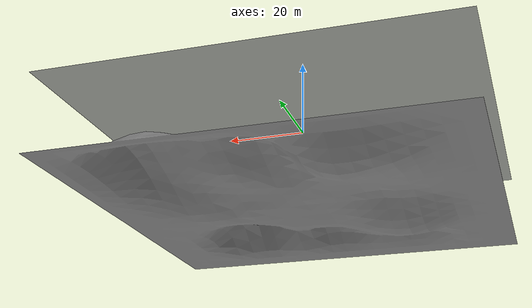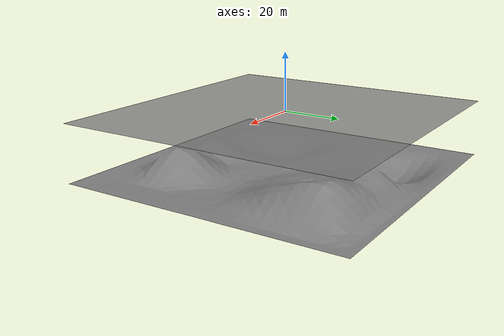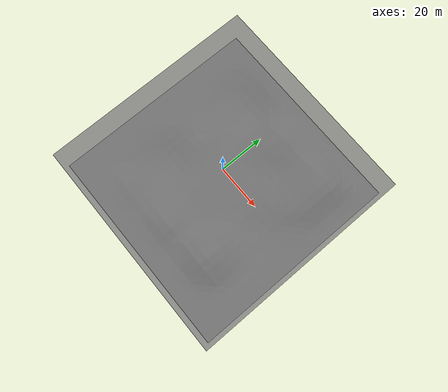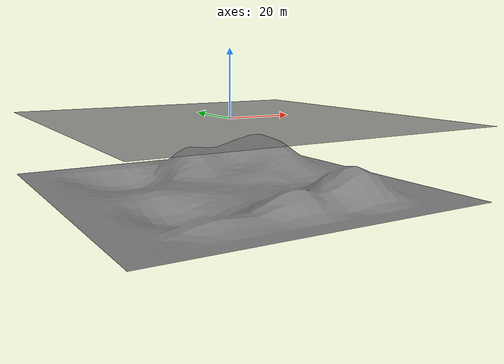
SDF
<?xml version="1.0" ?>
<sdf version="1.7">
  <model name="min_pipes_environment">
    <static>true</static>
    <link name="seabed">
      <collision name="seabed">
        <pose>0 0 -20 0 0 1.57</pose>
        <geometry>
          <mesh>
            <uri>meshes/seabed.dae</uri>
            <scale>1.0 1.0 1.0</scale>
          </mesh>
        </geometry>
      </collision>

      <visual name="seabed">
        <cast_shadows>true</cast_shadows>
        <pose>0 0 -20 0 0 1.57</pose>
        <geometry>
          <mesh>
            <uri>meshes/seabed.dae</uri>
            <scale>1.0 1.0 1.0</scale>
          </mesh>
        </geometry>
        <material>
          <pbr>
            <metal>
              <albedo_map>textures/soil_sand_0045_01.jpg</albedo_map>
            </metal>
          </pbr>
          <ambient>0.5 0.5 0.5 1.0</ambient>
          <diffuse>0.5 0.5 0.5 1.0</diffuse>
          <specular>0.2 0.2 0.2 1.0</specular>
        </material>
      </visual>
    </link>

    <link name="ocean_link">
      <visual name="surface">
        <pose>0 0 0 0 0 0</pose>
        <cast_shadows>false</cast_shadows>
        <geometry>
          <box>
            <size>100 100 0.01</size>
          </box>
        </geometry>
        <material>
          <pbr>
            <metal>
              <albedo_map>textures/water_water_0076_03_s.jpg</albedo_map>
            </metal>
          </pbr>
          <ambient> 0.5 0.5 0.5 0.8 </ambient>
          <diffuse> 0.5 0.5 0.5 0.8 </diffuse>
        </material>
      </visual>
    </link>

  </model>
</sdf>
